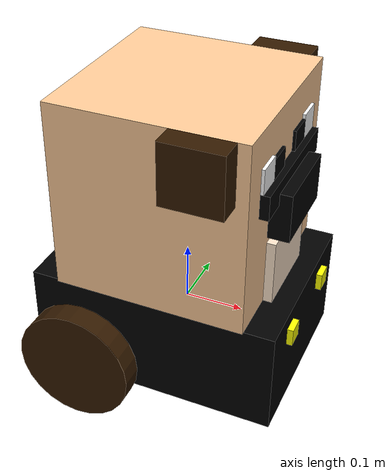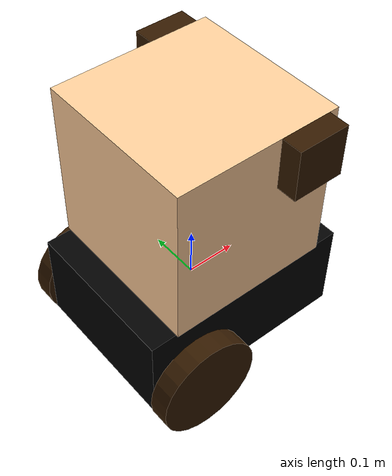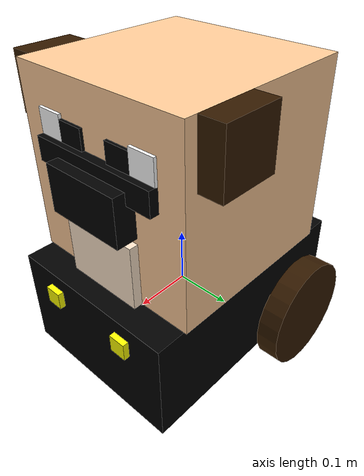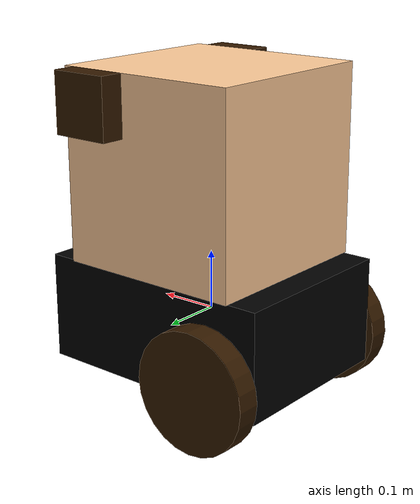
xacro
<?xml version="1.0"?>
<robot name="pi_robot" xmlns:xacro="http://ros.org/wiki/xacro">

	<xacro:include filename="gazebo.urdf.xacro" />

	<!-- * * * Link Definitions * * * -->

  <!-- Define robot constants -->
  <xacro:property name="base_width" value="0.31"/>
  <xacro:property name="base_length" value="0.42"/>
  <xacro:property name="base_height" value="0.18"/>

  <xacro:property name="wheel_radius" value="0.10"/>
  <xacro:property name="wheel_width" value="0.04"/>
  <xacro:property name="wheel_ygap" value="0.025"/>
  <xacro:property name="wheel_zoff" value="0.05"/>
  <xacro:property name="wheel_xoff" value="0.12"/>

  <xacro:property name="caster_xoff" value="0.14"/>

  <!-- Define intertial property macros  -->
  <xacro:macro name="box_inertia" params="m w h d">
    <inertial>
      <origin xyz="0 0 0" rpy="${pi/2} 0 ${pi/2}"/>
      <mass value="${m}"/>
      <inertia ixx="${(m/12) * (h*h + d*d)}" ixy="0.0" ixz="0.0" iyy="${(m/12) * (w*w + d*d)}" iyz="0.0" izz="${(m/12) * (w*w + h*h)}"/>
    </inertial>
  </xacro:macro>

  <xacro:macro name="cylinder_inertia" params="m r h">
    <inertial>
      <origin xyz="0 0 0" rpy="${pi/2} 0 0" />
      <mass value="${m}"/>
      <inertia ixx="${(m/12) * (3*r*r + h*h)}" ixy = "0" ixz = "0" iyy="${(m/12) * (3*r*r + h*h)}" iyz = "0" izz="${(m/2) * (r*r)}"/>
    </inertial>
  </xacro:macro>

  <xacro:macro name="sphere_inertia" params="m r">
    <inertial>
      <mass value="${m}"/>
      <inertia ixx="${(2/5) * m * (r*r)}" ixy="0.0" ixz="0.0" iyy="${(2/5) * m * (r*r)}" iyz="0.0" izz="${(2/5) * m * (r*r)}"/>
    </inertial>
  </xacro:macro>

  <!-- Robot Base -->
  <link name="base_link">
    <visual>
      <geometry>
        <box size="${base_length} ${base_width} ${base_height}"/>
      </geometry>
      <material name="Black">
        <color rgba="0 0.0 0.0 1.0"/>
      </material>
    </visual>

        <collision>
      <geometry>
        <box size="${base_length} ${base_width} ${base_height}"/>
      </geometry>
    </collision>

    <xacro:box_inertia m="15" w="${base_width}" d="${base_length}" h="${base_height}"/>

  </link>

  <!-- Robot Footprint -->
  <link name="base_footprint"/>

  <joint name="base_joint" type="fixed">
    <parent link="base_link"/>
    <child link="base_footprint"/>
    <origin xyz="0.0 0.0 ${-(wheel_radius+wheel_zoff)}" rpy="0 0 0"/>
  </joint>

    <!-- Wheels -->
  <xacro:macro name="wheel" params="prefix x_reflect y_reflect">
    <link name="${prefix}_link">
      <visual>
        <origin xyz="0 0 0" rpy="${pi/2} 0 0"/>
        <geometry>
            <cylinder radius="${wheel_radius}" length="${wheel_width}"/>
        </geometry>
        <material name="Grey1">
			<color rgba="0.2 0.1 0.0 1.0"/>
		</material>
      </visual>
      <collision>
        <origin xyz="0 0 0" rpy="${pi/2} 0 0"/>
        <geometry>
          <cylinder radius="${wheel_radius}" length="${wheel_width}"/>
        </geometry>
      </collision>

      <xacro:cylinder_inertia m="0.5" r="${wheel_radius}" h="${wheel_width}"/>

    </link>

    <joint name="${prefix}_joint" type="continuous">
      <parent link="base_link"/>
      <child link="${prefix}_link"/>
      <origin xyz="${x_reflect*wheel_xoff} ${y_reflect*(base_width/2+wheel_ygap)} ${-wheel_zoff}" rpy="0 0 0"/>
      <axis xyz="0 1 0"/>
    </joint>
  </xacro:macro>

  <xacro:wheel prefix="drivewhl_l" x_reflect="-1" y_reflect="1" />
  <xacro:wheel prefix="drivewhl_r" x_reflect="-1" y_reflect="-1" />

    <!-- Caster Wheel -->
  <link name="front_caster">
    <visual>
      <geometry>
        <sphere radius="${(wheel_radius+wheel_zoff-(base_height/2))}"/>
      </geometry>
      <material name="Grey1">
		<color rgba="0.2 0.1 0.0 1.0"/>
	  </material>
    </visual>
        <collision>
      <origin xyz="0 0 0" rpy="0 0 0"/>
      <geometry>
        <sphere radius="${(wheel_radius+wheel_zoff-(base_height/2))}"/>
      </geometry>
    </collision>

    <xacro:sphere_inertia m="0.5" r="${(wheel_radius+wheel_zoff-(base_height/2))}"/>
  </link>

  <joint name="caster_joint" type="continuous">
    <parent link="base_link"/>
    <child link="front_caster"/>
    <origin xyz="${caster_xoff} 0.0 ${-(base_height/2)}" rpy="0 0 0"/>
    <axis xyz="1 0 0"/>
  </joint>

  <link name="fara1_link">
		<visual>
			<origin xyz="0 0 0" rpy="0 0 0"/>
			<geometry>
				<box size="0.04 0.03 0.03"/>
			</geometry>
	     	<material name="Pink">
				<color rgba="1.0 1.0 0.0 1.0"/>
			</material>
	   </visual>
	</link>

	<joint name="fara1_joint" type="fixed">
    	<parent link="base_link"/>
    	<child link="fara1_link"/>
    	<origin xyz="0.20 0.0775 0.05" rpy="0 0 0"/>
	</joint>

	<link name="fara2_link">
		<visual>
			<origin xyz="0 0 0" rpy="0 0 0"/>
			<geometry>
				<box size="0.04 0.03 0.03"/>
			</geometry>
	     	<material name="Pink">
				<color rgba="1.0 1.0 0.0 1.0"/>
			</material>
	   </visual>
	</link>

	<joint name="fara2_joint" type="fixed">
    	<parent link="base_link"/>
    	<child link="fara2_link"/>
    	<origin xyz="0.20 -0.0775 0.05" rpy="0 0 0"/>
	</joint>

 	<link name="base_shape">
		<visual>
		    <origin xyz="0 0 0" rpy="0 0 0"/>
			<geometry>
				<box size="0.32 0.32 0.32"/>
			</geometry>
			<material name="LightBrown">
	       		<color rgba="1 0.8 0.6 1.0"/>
	     	</material>
		</visual>

    <collision>
      <geometry>
        <box size="${base_length} ${base_length} ${base_length}"/>
      </geometry>
    </collision>

    <xacro:box_inertia m="15" w="${base_length}" d="${base_length}" h="${base_length}"/>

	</link>

	<joint name="base_shape_joint" type="fixed">
    	<parent link="base_link"/>
   		<child link="base_shape"/>
    	<origin xyz="0.0 0.0 0.25" rpy="0 0 0"/>
  	</joint>

	<link name="right_ear_link">
		<visual>
			<origin xyz="0 0 0" rpy="0 0 0"/>
			<geometry>
				<box size="0.1 0.04 0.1"/>
			</geometry>
	     	<material name="Grey1">
				<color rgba="0.2 0.1 0.0 1.0"/>
			</material>
	   </visual>
	</link>

	<joint name="right_ear_joint" type="fixed">
    	<parent link="base_shape"/>
    	<child link="right_ear_link"/>
    	<origin xyz="0.09 0.18 0.11" rpy="0 0 0"/>
	</joint>

	<link name="left_ear_link">
		<visual>
			<origin xyz="0 0 0" rpy="0 0 0"/>
			<geometry>
				<box size="0.1 0.04 0.1"/>
			</geometry>
	     	<material name="Grey1">
				<color rgba="0.2 0.1 0.0 1.0"/>
			</material>
	   </visual>
	</link>

	<joint name="left_ear_joint" type="fixed">
    	<parent link="base_shape"/>
    	<child link="left_ear_link"/>
    	<origin xyz="0.09 -0.18 0.11" rpy="0 0 0"/>
	</joint>

	<link name="eye_link">
		<visual>
			<origin xyz="0 0 0" rpy="0 0 0"/>
			<geometry>
				<box size="0.03 0.23 0.04"/>
			</geometry>
	     	<material name="Black">
				<color rgba="0.0 0.0 0.0 1.0"/>
			</material>
	   </visual>
	</link>

	<joint name="eye_joint" type="fixed">
    	<parent link="base_shape"/>
    	<child link="eye_link"/>
    	<origin xyz="0.16 0.0 0.04" rpy="0 0 0"/>
	</joint>

	<link name="nose_link">
		<visual>
			<origin xyz="0 0 0" rpy="0 0 0"/>
			<geometry>
				<box size="0.05 0.14 0.08"/>
			</geometry>
	     	<material name="Black">
				<color rgba="0.0 0.0 0.0 1.0"/>
			</material>
	   </visual>
	</link>

	<joint name="nose_joint" type="fixed">
    	<parent link="base_shape"/>
    	<child link="nose_link"/>
    	<origin xyz="0.17 0.0 0.0" rpy="0 0 0"/>
	</joint>

	<link name="mouth_link">
		<visual>
			<origin xyz="0 0 0" rpy="0 0 0"/>
			<geometry>
				<box size="0.03 0.14 0.11"/>
			</geometry>
	     	<material name="light_gray">
				<color rgba="1 0.9 0.8 1.0"/>
			</material>
	   </visual>
	</link>

	<joint name="mouth_joint" type="fixed">
    	<parent link="base_shape"/>
    	<child link="mouth_link"/>
    	<origin xyz="0.16 0.0 -0.105" rpy="0 0 0"/>
	</joint>

	<link name="left_eye_link">
		<visual>
			<origin xyz="0 0 0" rpy="0 0 0"/>
			<geometry>
				<box size="0.01 0.045 0.042"/>
			</geometry>
	     	<material name="White">
				<color rgba="1.0 1.0 1.0 1.0"/>
			</material>
	   </visual>
	</link>

	<joint name="left_eye_joint" type="fixed">
    	<parent link="base_shape"/>
    	<child link="left_eye_link"/>
    	<origin xyz="0.16 0.0925 0.08" rpy="0 0 0"/>
	</joint>

	<link name="right_eye_link">
		<visual>
			<origin xyz="0 0 0" rpy="0 0 0"/>
			<geometry>
				<box size="0.01 0.045 0.042"/>
			</geometry>
	     	<material name="White">
				<color rgba="1.0 1.0 1.0 1.0"/>
			</material>
	   </visual>
	</link>

	<joint name="right_eye_joint" type="fixed">
    	<parent link="base_shape"/>
    	<child link="right_eye_link"/>
    	<origin xyz="0.16 -0.0925 0.08" rpy="0 0 0"/>
	</joint>

	<link name="left_e_link">
		<visual>
			<origin xyz="0 0 0" rpy="0 0 0"/>
			<geometry>
				<box size="0.01 0.045 0.038"/>
			</geometry>
	     	<material name="Black">
				<color rgba="0.0 0.0 0.0 1.0"/>
			</material>
	   </visual>
	</link>

	<joint name="left_e_joint" type="fixed">
    	<parent link="base_shape"/>
    	<child link="left_e_link"/>
    	<origin xyz="0.16 0.0475 0.075" rpy="0 0 0"/>
	</joint>

	<link name="right_e_link">
		<visual>
			<origin xyz="0 0 0" rpy="0 0 0"/>
			<geometry>
				<box size="0.01 0.045 0.038"/>
			</geometry>
	     	<material name="Black">
				<color rgba="0.0 0.0 0.0 1.0"/>
			</material>
	   </visual>
	</link>

	<joint name="right_e_joint" type="fixed">
    	<parent link="base_shape"/>
    	<child link="right_e_link"/>
    	<origin xyz="0.16 -0.0475 0.075" rpy="0 0 0"/>
	</joint>

</robot>
